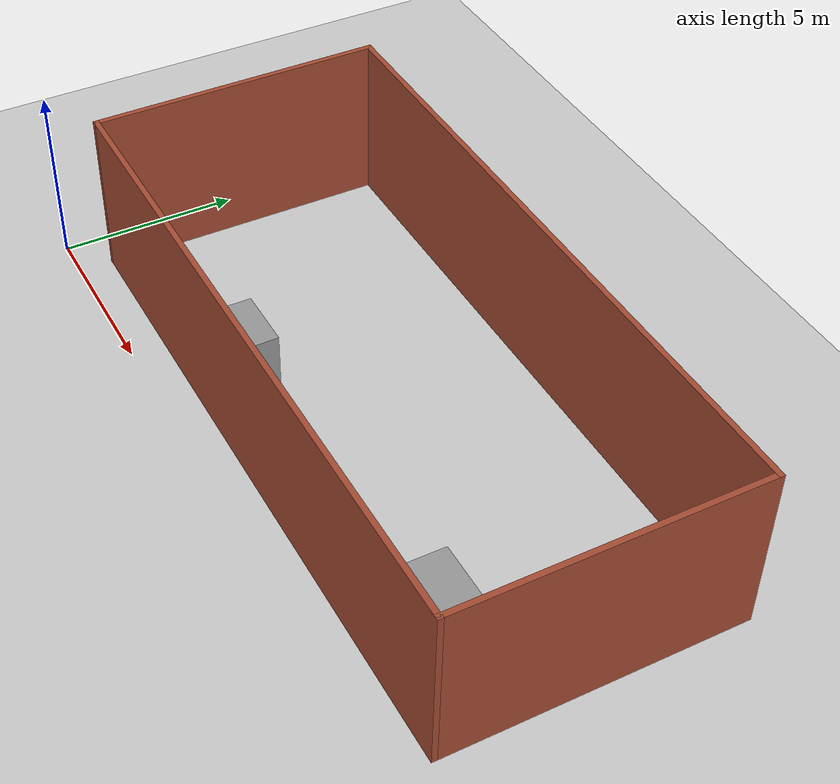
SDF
<sdf version="1.6">
 <world name="default">
  <light name="sun" type="directional">
   <pose>0 0 10 0 -0 0</pose>
   <diffuse>0.8 0.8 0.8 1</diffuse>
   <specular>0.1 0.1 0.1 1</specular>
   <attenuation>
    <range>1000</range>
    <constant>0.9</constant>
    <linear>0.01</linear>
    <quadratic>0.001</quadratic>
   </attenuation>
   <direction>-0.5 0.5 -1</direction>
  </light>
  <model name="ground_plane">
   <static>1</static>
   <link name="link">
    <collision name="collision">
     <geometry><plane><normal>0 0 1</normal><size>100 100</size></plane></geometry>
     <surface><friction><ode><mu>100</mu><mu2>50</mu2></ode></friction></surface>
    </collision>
    <visual name="visual">
     <cast_shadows>0</cast_shadows>
     <geometry><plane><normal>0 0 1</normal><size>100 100</size></plane></geometry>
     <material>
      <script><uri>file://media/materials/scripts/gazebo.material</uri><name>Gazebo/Grey</name></script>
     </material>
    </visual>
   </link>
  </model>
  <gravity>0 0 -9.8</gravity>
  <magnetic_field>6e-06 2.3e-05 -4.2e-05</magnetic_field>
  <atmosphere type="adiabatic"/>
  <physics name="default_physics" default="0" type="ode">
   <max_step_size>0.001</max_step_size>
   <real_time_factor>1</real_time_factor>
   <real_time_update_rate>1000</real_time_update_rate>
  </physics>
  <scene><ambient>0.4 0.4 0.4 1</ambient><background>0.7 0.7 0.7 1</background><shadows>1</shadows></scene>
  <spherical_coordinates>
   <surface_model>EARTH_WGS84</surface_model>
   <latitude_deg>0</latitude_deg>
   <longitude_deg>0</longitude_deg>
   <elevation>0</elevation>
   <heading_deg>0</heading_deg>
  </spherical_coordinates>
  <model name="robot_lab">
   <pose>10.375 5.025 0 0 -0 0</pose>
   <link name="Wall_10">
    <collision name="Wall_10_Collision">
     <geometry><box><size>18.6 0.15 4.7</size></box></geometry>
     <pose>0 0 2.35 0 -0 0</pose>
    </collision>
    <visual name="Wall_10_Visual">
     <pose>0 0 2.35 0 -0 0</pose>
     <geometry><box><size>18.6 0.15 4.7</size></box></geometry>
     <material>
      <script><uri>file://media/materials/scripts/gazebo.material</uri><name>Gazebo/Bricks</name></script>
      <ambient>1 1 1 1</ambient>
     </material>
    </visual>
    <pose>0 4.025 0 0 -0 0</pose>
   </link>
   <link name="Wall_12">
    <collision name="Wall_12_Collision">
     <geometry><box><size>8.2 0.15 4.7</size></box></geometry>
     <pose>0 0 2.35 0 -0 0</pose>
    </collision>
    <visual name="Wall_12_Visual">
     <pose>0 0 2.35 0 -0 0</pose>
     <geometry><box><size>8.2 0.15 4.7</size></box></geometry>
     <material>
      <script><uri>file://media/materials/scripts/gazebo.material</uri><name>Gazebo/Bricks</name></script>
      <ambient>1 1 1 1</ambient>
     </material>
    </visual>
    <pose>9.225 0 0 0 0 -1.5708</pose>
   </link>
   <link name="Wall_7">
    <collision name="Wall_7_Collision">
     <geometry><box><size>18.6 0.15 4.7</size></box></geometry>
     <pose>0 0 2.35 0 -0 0</pose>
    </collision>
    <visual name="Wall_7_Visual">
     <pose>0 0 2.35 0 -0 0</pose>
     <geometry><box><size>18.6 0.15 4.7</size></box></geometry>
     <material>
      <script><uri>file://media/materials/scripts/gazebo.material</uri><name>Gazebo/Bricks</name></script>
      <ambient>1 1 1 1</ambient>
     </material>
    </visual>
    <pose>0 -4.025 0 0 -0 3.14159</pose>
   </link>
   <link name="Wall_9">
    <collision name="Wall_9_Collision">
     <geometry><box><size>8.2 0.15 4.7</size></box></geometry>
     <pose>0 0 2.35 0 -0 0</pose>
    </collision>
    <visual name="Wall_9_Visual">
     <pose>0 0 2.35 0 -0 0</pose>
     <geometry><box><size>8.2 0.15 4.7</size></box></geometry>
     <material>
      <script><uri>file://media/materials/scripts/gazebo.material</uri><name>Gazebo/Bricks</name></script>
      <ambient>1 1 1 1</ambient>
     </material>
    </visual>
    <pose>-9.225 0 0 0 -0 1.5708</pose>
   </link>
   <static>1</static>
  </model>
  <model name="3dprinter_0">
   <link name="link_2">
    <inertial>
     <mass>1</mass>
     <inertia>
      <ixx>0.166667</ixx>
      <ixy>0</ixy>
      <ixz>0</ixz>
      <iyy>0.166667</iyy>
      <iyz>0</iyz>
      <izz>0.166667</izz>
     </inertia>
    </inertial>
    <visual name="visual">
     <geometry><box><size>1.7 1.7 2</size></box></geometry>
     <material>
      <lighting>1</lighting>
      <script><uri>file://media/materials/scripts/gazebo.material</uri><name>Gazebo/Grey</name></script>
      <ambient>0.3 0.3 0.3 1</ambient>
      <diffuse>0.7 0.7 0.7 1</diffuse>
      <specular>0.01 0.01 0.01 1</specular>
      <emissive>0 0 0 1</emissive>
      <shader type="vertex"><normal_map>__default__</normal_map></shader>
     </material>
    </visual>
    <collision name="collision">
     <geometry><box><size>1.7 1.7 2</size></box></geometry>
     <surface>
      <friction>
       <ode><mu>1</mu><mu2>1</mu2><fdir1>0 0 0</fdir1><slip1>0</slip1><slip2>0</slip2></ode>
       <torsional>
        <coefficient>1</coefficient>
        <patch_radius>0</patch_radius>
        <surface_radius>0</surface_radius>
        <use_patch_radius>1</use_patch_radius>
        <ode><slip>0</slip></ode>
       </torsional>
      </friction>
      <bounce><restitution_coefficient>0</restitution_coefficient><threshold>1e+06</threshold></bounce>
      <contact>
       <collide_without_contact>0</collide_without_contact>
       <collide_without_contact_bitmask>1</collide_without_contact_bitmask>
       <collide_bitmask>1</collide_bitmask>
       <ode>
        <soft_cfm>0</soft_cfm>
        <soft_erp>0.2</soft_erp>
        <kp>1e+13</kp>
        <kd>1</kd>
        <max_vel>0.01</max_vel>
        <min_depth>0</min_depth>
       </ode>
       <bullet>
        <split_impulse>1</split_impulse>
        <split_impulse_penetration_threshold>-0.01</split_impulse_penetration_threshold>
        <soft_cfm>0</soft_cfm>
        <soft_erp>0.2</soft_erp>
        <kp>1e+13</kp>
        <kd>1</kd>
       </bullet>
      </contact>
     </surface>
    </collision>
   </link>
   <static>1</static>
   <pose>7.4 2 1 0 -0 0</pose>
  </model>
  <model name="viewing_stage">
   <link name="link_2">
    <inertial>
     <mass>1</mass>
     <inertia>
      <ixx>0.166667</ixx>
      <ixy>0</ixy>
      <ixz>0</ixz>
      <iyy>0.166667</iyy>
      <iyz>0</iyz>
      <izz>0.166667</izz>
     </inertia>
    </inertial>
    <visual name="visual">
     <geometry><box><size>4.5 2.8 0.4</size></box></geometry>
     <material>
      <lighting>1</lighting>
      <script><uri>file://media/materials/scripts/gazebo.material</uri><name>Gazebo/Grey</name></script>
      <ambient>0.3 0.3 0.3 1</ambient>
      <diffuse>0.7 0.7 0.7 1</diffuse>
      <specular>0.01 0.01 0.01 1</specular>
      <emissive>0 0 0 1</emissive>
      <shader type="vertex"><normal_map>__default__</normal_map></shader>
     </material>
    </visual>
    <collision name="collision">
     <geometry><box><size>4.5 2.8 0.4</size></box></geometry>
     <surface>
      <friction>
       <ode><mu>1</mu><mu2>1</mu2><fdir1>0 0 0</fdir1><slip1>0</slip1><slip2>0</slip2></ode>
       <torsional>
        <coefficient>1</coefficient>
        <patch_radius>0</patch_radius>
        <surface_radius>0</surface_radius>
        <use_patch_radius>1</use_patch_radius>
        <ode><slip>0</slip></ode>
       </torsional>
      </friction>
      <bounce><restitution_coefficient>0</restitution_coefficient><threshold>1e+06</threshold></bounce>
      <contact>
       <collide_without_contact>0</collide_without_contact>
       <collide_without_contact_bitmask>1</collide_without_contact_bitmask>
       <collide_bitmask>1</collide_bitmask>
       <ode>
        <soft_cfm>0</soft_cfm>
        <soft_erp>0.2</soft_erp>
        <kp>1e+13</kp>
        <kd>1</kd>
        <max_vel>0.01</max_vel>
        <min_depth>0</min_depth>
       </ode>
       <bullet>
        <split_impulse>1</split_impulse>
        <split_impulse_penetration_threshold>-0.01</split_impulse_penetration_threshold>
        <soft_cfm>0</soft_cfm>
        <soft_erp>0.2</soft_erp>
        <kp>1e+13</kp>
        <kd>1</kd>
       </bullet>
      </contact>
     </surface>
    </collision>
   </link>
   <static>0</static>
   <pose>17.2 2.55 0.2 0 -0 0</pose>
  </model>
  <model name="euro_pallet">
   <link name="link_0">
    <pose>0 0 0 0 -0 1.5707</pose>
    <inertial>
     <mass>1</mass>
     <inertia>
      <ixx>0.166667</ixx>
      <ixy>0</ixy>
      <ixz>0</ixz>
      <iyy>0.166667</iyy>
      <iyz>0</iyz>
      <izz>0.166667</izz>
     </inertia>
    </inertial>
    <visual name="visual">
     <geometry>
      <mesh>
       <uri>/home/ksatyaki/workspace/orunav_ws/src/navigation_oru/gazebo_oru/euro_pallet/meshes/EuroPallet.dae</uri>
       <scale>1 1 1</scale>
      </mesh>
     </geometry>
     <material>
      <lighting>1</lighting>
      <script><uri>file://media/materials/scripts/gazebo.material</uri><name>Gazebo/Grey</name></script>
      <ambient>0.3 0.3 0.3 1</ambient>
      <diffuse>0.7 0.7 0.7 1</diffuse>
      <specular>0.01 0.01 0.01 1</specular>
      <emissive>0 0 0 1</emissive>
      <shader type="vertex"><normal_map>__default__</normal_map></shader>
     </material>
    </visual>
    <collision name="collision">
     <geometry>
      <mesh>
       <uri>/home/ksatyaki/workspace/orunav_ws/src/navigation_oru/gazebo_oru/euro_pallet/meshes/EuroPallet.dae</uri>
       <scale>1 1 1</scale>
      </mesh>
     </geometry>
     <surface>
      <friction>
       <ode><mu>1</mu><mu2>1</mu2><fdir1>0 0 0</fdir1><slip1>0</slip1><slip2>0</slip2></ode>
       <torsional>
        <coefficient>1</coefficient>
        <patch_radius>0</patch_radius>
        <surface_radius>0</surface_radius>
        <use_patch_radius>1</use_patch_radius>
        <ode><slip>0</slip></ode>
       </torsional>
      </friction>
      <bounce><restitution_coefficient>0</restitution_coefficient><threshold>1e+06</threshold></bounce>
      <contact>
       <collide_without_contact>0</collide_without_contact>
       <collide_without_contact_bitmask>1</collide_without_contact_bitmask>
       <collide_bitmask>1</collide_bitmask>
       <ode>
        <soft_cfm>0</soft_cfm>
        <soft_erp>0.2</soft_erp>
        <kp>1e+13</kp>
        <kd>1</kd>
        <max_vel>0.01</max_vel>
        <min_depth>0</min_depth>
       </ode>
       <bullet>
        <split_impulse>1</split_impulse>
        <split_impulse_penetration_threshold>-0.01</split_impulse_penetration_threshold>
        <soft_cfm>0</soft_cfm>
        <soft_erp>0.2</soft_erp>
        <kp>1e+13</kp>
        <kd>1</kd>
       </bullet>
      </contact>
     </surface>
    </collision>
   </link>
   <static>0</static>
   <pose>3 2.2 0 0 -0 0</pose>
  </model>
  <model name="euro_pallet_0">
   <link name="link_0">
    <pose>0 0 0 0 -0 1.5707</pose>
    <inertial>
     <mass>1</mass>
     <inertia>
      <ixx>0.166667</ixx>
      <ixy>0</ixy>
      <ixz>0</ixz>
      <iyy>0.166667</iyy>
      <iyz>0</iyz>
      <izz>0.166667</izz>
     </inertia>
    </inertial>
    <visual name="visual">
     <geometry>
      <mesh>
       <uri>/home/ksatyaki/workspace/orunav_ws/src/navigation_oru/gazebo_oru/euro_pallet/meshes/EuroPallet.dae</uri>
       <scale>1 1 1</scale>
      </mesh>
     </geometry>
     <material>
      <lighting>1</lighting>
      <script><uri>file://media/materials/scripts/gazebo.material</uri><name>Gazebo/Grey</name></script>
      <ambient>0.3 0.3 0.3 1</ambient>
      <diffuse>0.7 0.7 0.7 1</diffuse>
      <specular>0.01 0.01 0.01 1</specular>
      <emissive>0 0 0 1</emissive>
      <shader type="vertex"><normal_map>__default__</normal_map></shader>
     </material>
    </visual>
    <collision name="collision">
     <geometry>
      <mesh>
       <uri>/home/ksatyaki/workspace/orunav_ws/src/navigation_oru/gazebo_oru/euro_pallet/meshes/EuroPallet.dae</uri>
       <scale>1 1 1</scale>
      </mesh>
     </geometry>
     <surface>
      <friction>
       <ode><mu>1</mu><mu2>1</mu2><fdir1>0 0 0</fdir1><slip1>0</slip1><slip2>0</slip2></ode>
       <torsional>
        <coefficient>1</coefficient>
        <patch_radius>0</patch_radius>
        <surface_radius>0</surface_radius>
        <use_patch_radius>1</use_patch_radius>
        <ode><slip>0</slip></ode>
       </torsional>
      </friction>
      <bounce><restitution_coefficient>0</restitution_coefficient><threshold>1e+06</threshold></bounce>
      <contact>
       <collide_without_contact>0</collide_without_contact>
       <collide_without_contact_bitmask>1</collide_without_contact_bitmask>
       <collide_bitmask>1</collide_bitmask>
       <ode>
        <soft_cfm>0</soft_cfm>
        <soft_erp>0.2</soft_erp>
        <kp>1e+13</kp>
        <kd>1</kd>
        <max_vel>0.01</max_vel>
        <min_depth>0</min_depth>
       </ode>
       <bullet>
        <split_impulse>1</split_impulse>
        <split_impulse_penetration_threshold>-0.01</split_impulse_penetration_threshold>
        <soft_cfm>0</soft_cfm>
        <soft_erp>0.2</soft_erp>
        <kp>1e+13</kp>
        <kd>1</kd>
       </bullet>
      </contact>
     </surface>
    </collision>
   </link>
   <static>0</static>
   <pose>4.5 2.2 0 0 -0 0</pose>
  </model>
 </world>
</sdf>
